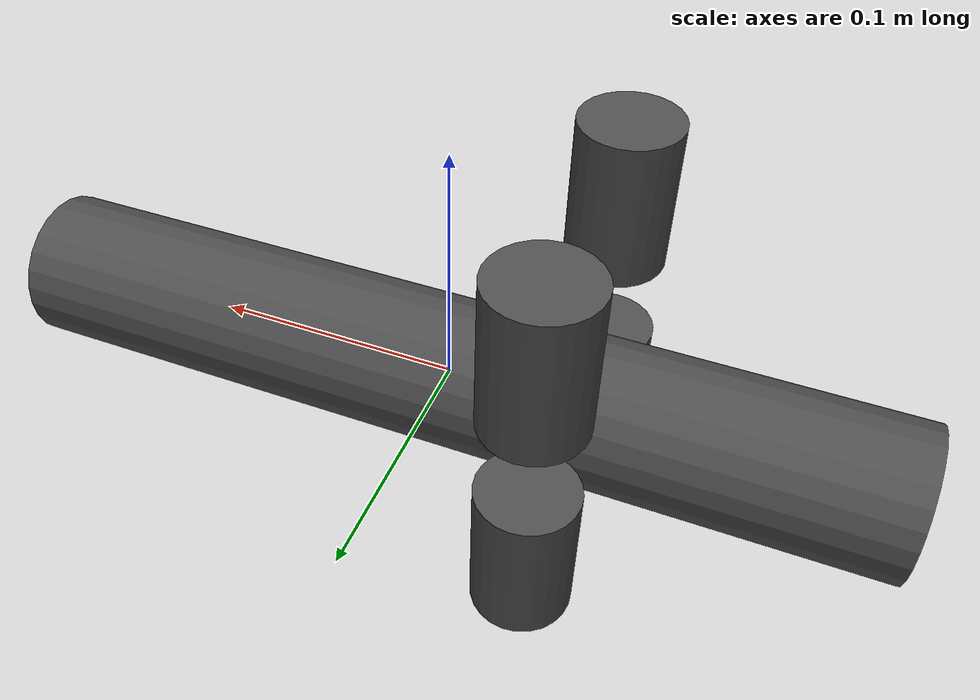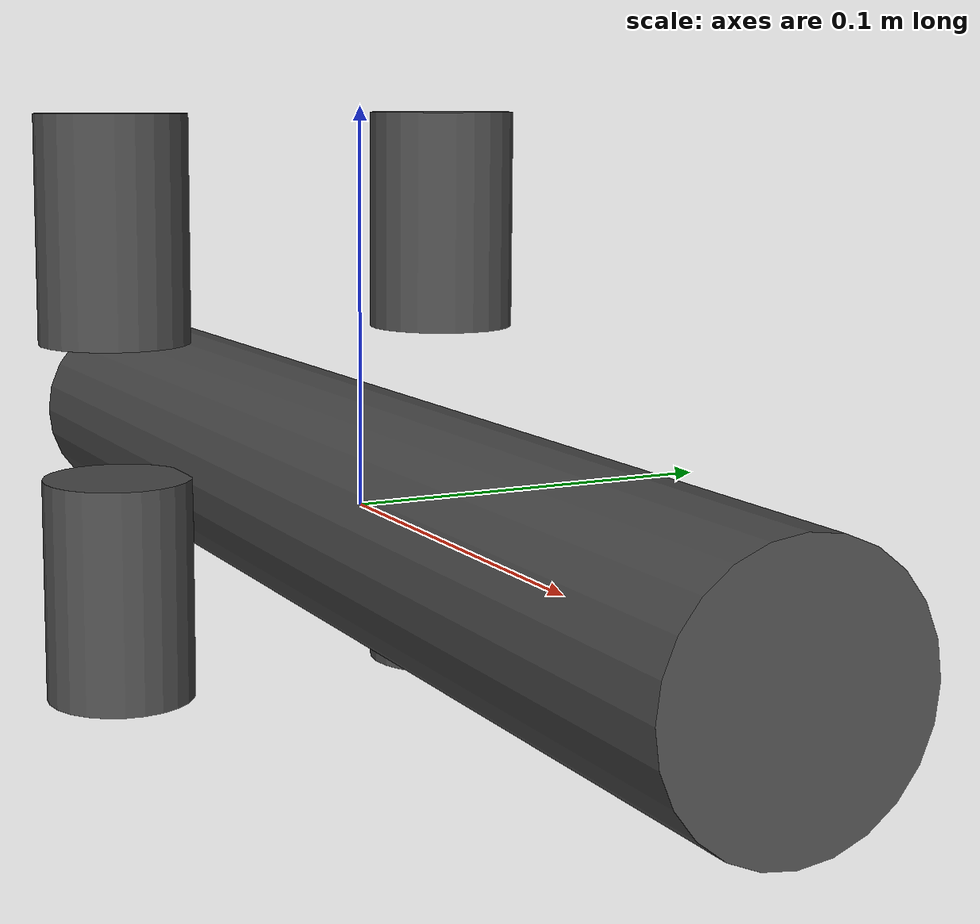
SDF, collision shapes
<sdf version='1.5'>
  <model name='hippocampus_vision_3'>
    <plugin name="vision_plugin" filename="libgazebo_vision_plugin.so">
        <robotNamespace></robotNamespace>
        <pubRate>30</pubRate>
        <randomWalk>1.0</randomWalk>
        <noiseDensity>5e-04</noiseDensity>
        <corellationTime>60.0</corellationTime>
    </plugin>

    <include>
      <uri>model://hippocampus_3</uri>
    </include>

  </model>
</sdf>

<!-- vim: set et ft=xml fenc=utf-8 ff=unix sts=0 sw=2 ts=2 : -->

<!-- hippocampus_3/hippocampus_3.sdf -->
<sdf version='1.6'>
  <model name='hippocampus'>
    <link name='base_link'>
      <pose>0 0 0 0 0 0</pose>
      <inertial>
        <pose>0 0 0 0 0 0</pose>
        <mass>1.47</mass>
        <inertia>
          <ixx>0.002408</ixx>
          <ixy>0</ixy>
          <ixz>0</ixz>
          <iyy>100.010717</iyy>
          <iyz>0</iyz>
          <izz>0.010717</izz>
        </inertia>
      </inertial>
      <!--
         no self collision and no kinematics, since both are are modelled later (collision via a cylinder)
      -->
      <self_collide>0</self_collide>
      <kinematic>0</kinematic>
      <velocity_decay/>
      <gravity>0</gravity>
      <!--
          visual properties of the link, (here the base of the hippocampus)
      -->
      <visual name='visual'>
        <pose>0 0 0 0 0 0</pose>
        <geometry>
          <mesh>
            <uri>model://hippocampus/meshes/hippocampus.stl</uri>
          </mesh>
        </geometry>
        <material>
          <lighting>1</lighting>
          <script>
            <uri>__default__</uri>
            <name>Gazebo/DarkGrey</name>
          </script>
          <ambient>0.3 0.3 0.3 1</ambient>
          <diffuse>0.7 0.7 0.7 1</diffuse>
          <specular>0.01 0.01 0.01 1</specular>
          <emissive>0 0 0 1</emissive>
          <shader type='vertex'>
            <normal_map>__default__</normal_map>
          </shader>
        </material>
        <cast_shadows>1</cast_shadows>
        <transparency>0</transparency>
      </visual>

    <!-- RGB cylinders representing the resulting frame -->
      <visual name="frameX">
      <pose>0.1 0 0 0 1.57 0</pose>
          <geometry>
            <cylinder>
              <length>0.35</length>
              <radius>0.005</radius>
            </cylinder>
          </geometry>
          <material>
            <ambient>0.0 0.0 0.0 1</ambient>
            <diffuse>0.0 0.0 0.0 1</diffuse>
            <specular>0.0 0.0 0.0 1</specular>
            <emissive>1.0 0.0 0.0 1</emissive>
          </material>
      </visual>
      <visual name="frameY">
      <pose>0 0.1 0 -1.57 0 0</pose>
          <geometry>
            <cylinder>
              <length>0.25</length>
              <radius>0.005</radius>
            </cylinder>
          </geometry>
          <material>
            <ambient>0.0 0.0 0.0 1</ambient>
            <diffuse>0.0 0.0 0.0 1</diffuse>
            <specular>0.0 0.0 0.0 1</specular>
            <emissive>0.0 1.0 0.0 1</emissive>
          </material>
      </visual>
      <visual name="frameZ">
      <pose>0 0 0.1 0 0 0</pose>
          <geometry>
            <cylinder>
              <length>0.25</length>
              <radius>0.005</radius>
            </cylinder>
          </geometry>
          <material>
            <ambient>0.0 0.0 0.0 1</ambient>
            <diffuse>0.0 0.0 0.0 1</diffuse>
            <specular>0.0 0.0 0.0 1</specular>
            <emissive>0.0 0.0 1.0 1</emissive>
          </material>
      </visual>

      <collision name='base_link_inertia_collision'>
        <laser_retro>0</laser_retro>
        <max_contacts>10</max_contacts>
        <pose>0 0 0 0 1.570796 0</pose>
        <geometry>
          <cylinder>
            <radius>0.03</radius>
            <length>0.36</length>
          </cylinder>
        </geometry>
        <!--
            Here the surface attributes are defined for the colision cylinder
        -->
        <surface>
          <friction>
            <ode>
              <mu>1</mu>
              <mu2>1</mu2>
              <fdir1>0 0 0</fdir1>
              <slip1>0</slip1>
              <slip2>0</slip2>
            </ode>
          </friction>
          <bounce>
            <restitution_coefficient>0</restitution_coefficient>
            <threshold>1e+06</threshold>
          </bounce>
          <contact>
            <collide_without_contact>0</collide_without_contact>
            <collide_without_contact_bitmask>1</collide_without_contact_bitmask>
            <collide_bitmask>1</collide_bitmask>
            <ode>
              <soft_cfm>0</soft_cfm>
              <soft_erp>0.2</soft_erp>
              <kp>1e+13</kp>
              <kd>1</kd>
              <max_vel>0.01</max_vel>
              <min_depth>0</min_depth>
            </ode>
            <bullet>
              <split_impulse>1</split_impulse>
              <split_impulse_penetration_threshold>-0.01</split_impulse_penetration_threshold>
              <soft_cfm>0</soft_cfm>
              <soft_erp>0.2</soft_erp>
              <kp>1e+13</kp>
              <kd>1</kd>
            </bullet>
          </contact>
        </surface>
      </collision>
    </link>

    <link name='/imu_link'>
      <pose>0 0 0 3.1415 0 0</pose>
      <inertial>
        <pose>0 0 0 0 0 0</pose>
        <mass>0.015</mass>
        <inertia>
          <ixx>1e-05</ixx>
          <ixy>0</ixy>
          <ixz>0</ixz>
          <iyy>1e-05</iyy>
          <iyz>0</iyz>
          <izz>1e-05</izz>
        </inertia>
      </inertial>
      <self_collide>0</self_collide>
      <kinematic>0</kinematic>
      <gravity>0</gravity>
    </link>

    <joint name='/imu_joint' type='revolute'>
      <child>/imu_link</child>
      <parent>base_link</parent>
      <axis>
        <xyz>1 0 0</xyz>
        <limit>
          <lower>0</lower>
          <upper>0</upper>
          <effort>0</effort>
          <velocity>0</velocity>
        </limit>
        <dynamics>
          <spring_reference>0</spring_reference>
          <spring_stiffness>0</spring_stiffness>
          <damping>0</damping>
          <friction>0</friction>
        </dynamics>
	<use_parent_model_frame>1</use_parent_model_frame>
      </axis>
      <physics>
        <ode>
          <limit>
            <cfm>0</cfm>
            <erp>0.2</erp>
          </limit>
          <suspension>
            <cfm>0</cfm>
            <erp>0.2</erp>
          </suspension>
        </ode>
      </physics>
    </joint>

    <!-- CCW 1-->
    <link name='rotor_0'>
      <pose>-0.05 -0.0481 -0.0481 0 0 0</pose>
      <self_collide>0</self_collide>
      <kinematic>0</kinematic>
      <velocity_decay/>
      <gravity>0</gravity>
      <collision name='rotor_0_collision'>
        <laser_retro>0</laser_retro>
        <max_contacts>10</max_contacts>
        <pose>0 0 0.02 0 0 0</pose>
        <geometry>
          <cylinder>
            <radius>0.02</radius>
            <length>0.06</length>
          </cylinder>
        </geometry>
        <surface>
          <friction>
            <ode>
              <mu>1</mu>
              <mu2>1</mu2>
              <fdir1>0 0 0</fdir1>
              <slip1>0</slip1>
              <slip2>0</slip2>
            </ode>
          </friction>
          <bounce>
            <restitution_coefficient>0</restitution_coefficient>
            <threshold>1e+06</threshold>
          </bounce>
          <contact>
            <collide_without_contact>0</collide_without_contact>
            <collide_without_contact_bitmask>1</collide_without_contact_bitmask>
            <collide_bitmask>1</collide_bitmask>
            <ode>
              <soft_cfm>0</soft_cfm>
              <soft_erp>0.2</soft_erp>
              <kp>1e+13</kp>
              <kd>1</kd>
              <max_vel>0.01</max_vel>
              <min_depth>0</min_depth>
            </ode>
            <bullet>
              <split_impulse>1</split_impulse>
              <split_impulse_penetration_threshold>-0.01</split_impulse_penetration_threshold>
              <soft_cfm>0</soft_cfm>
              <soft_erp>0.2</soft_erp>
              <kp>1e+13</kp>
              <kd>1</kd>
            </bullet>
          </contact>
        </surface>
      </collision>
      <visual name='rotor_0_visual'>
        <pose>0 0 0 0 0 0</pose>
        <geometry>
          <mesh>
            <scale>1 1 1</scale>
            <uri>model://hippocampus/meshes/hippocampus_prop.stl</uri>
          </mesh>
        </geometry>
        <material>
          <script>
            <name>Gazebo/DarkGrey</name>
            <uri>file://media/materials/scripts/gazebo.material</uri>
          </script>
          <ambient>0 0 1 1</ambient>
          <diffuse>0 0 1 1</diffuse>
          <specular>0 0 1 1</specular>
          <emissive>0 0 1 1</emissive>
          <shader type='vertex'>
            <normal_map>__default__</normal_map>
          </shader>
        </material>
        <cast_shadows>1</cast_shadows>
        <transparency>0</transparency>
      </visual>
    </link>
    <joint name='rotor_0_joint' type='revolute'>
      <child>rotor_0</child>
      <parent>base_link</parent>
      <axis>
        <xyz>1 0 0</xyz>
        <limit>
          <lower>-1e+16</lower>
          <upper>1e+16</upper>
          <effort>-1</effort>
          <velocity>-1</velocity>
        </limit>
        <dynamics>
          <spring_reference>0</spring_reference>
          <spring_stiffness>0</spring_stiffness>
          <damping>0</damping>
          <friction>0</friction>
        </dynamics>
        <use_parent_model_frame>1</use_parent_model_frame>
      </axis>
      <physics>
        <ode>
          <limit>
            <cfm>0</cfm>
            <erp>0.2</erp>
          </limit>
          <suspension>
            <cfm>0</cfm>
            <erp>0.2</erp>
          </suspension>
        </ode>
      </physics>
    </joint>
    <!-- CW 2 -->
    <link name='rotor_1'>
      <pose>-0.05 +0.0481 -0.0481 0 0 0</pose>
      <self_collide>0</self_collide>
      <kinematic>0</kinematic>
      <velocity_decay/>
      <gravity>0</gravity>
      <collision name='rotor_1_collision'>
        <laser_retro>0</laser_retro>
        <max_contacts>10</max_contacts>
        <pose>0 0 0.02 0 0 0</pose>
        <geometry>
          <cylinder>
            <radius>0.02</radius>
            <length>0.06</length>
          </cylinder>
        </geometry>
        <surface>
          <friction>
            <ode>
              <mu>1</mu>
              <mu2>1</mu2>
              <fdir1>0 0 0</fdir1>
              <slip1>0</slip1>
              <slip2>0</slip2>
            </ode>
          </friction>
          <bounce>
            <restitution_coefficient>0</restitution_coefficient>
            <threshold>1e+06</threshold>
          </bounce>
          <contact>
            <collide_without_contact>0</collide_without_contact>
            <collide_without_contact_bitmask>1</collide_without_contact_bitmask>
            <collide_bitmask>1</collide_bitmask>
            <ode>
              <soft_cfm>0</soft_cfm>
              <soft_erp>0.2</soft_erp>
              <kp>1e+13</kp>
              <kd>1</kd>
              <max_vel>0.01</max_vel>
              <min_depth>0</min_depth>
            </ode>
            <bullet>
              <split_impulse>1</split_impulse>
              <split_impulse_penetration_threshold>-0.01</split_impulse_penetration_threshold>
              <soft_cfm>0</soft_cfm>
              <soft_erp>0.2</soft_erp>
              <kp>1e+13</kp>
              <kd>1</kd>
            </bullet>
          </contact>
        </surface>
      </collision>
      <visual name='rotor_1_visual'>
        <pose>0 0 0 0 0 0</pose>
        <geometry>
          <mesh>
            <scale>1 1 1</scale>
            <uri>model://hippocampus/meshes/hippocampus_prop.stl</uri>
          </mesh>
        </geometry>
        <material>
          <script>
            <name>Gazebo/DarkGrey</name>
            <uri>file://media/materials/scripts/gazebo.material</uri>
          </script>
          <ambient>0 0 1 1</ambient>
          <diffuse>0 0 1 1</diffuse>
          <specular>0 0 1 1</specular>
          <emissive>0 0 1 1</emissive>
          <shader type='vertex'>
            <normal_map>__default__</normal_map>
          </shader>
        </material>
        <cast_shadows>1</cast_shadows>
        <transparency>0</transparency>
      </visual>
    </link>
    <joint name='rotor_1_joint' type='revolute'>
      <parent>base_link</parent>
      <child>rotor_1</child>
      <axis>
        <xyz>1 0 0</xyz>
        <use_parent_model_frame>1</use_parent_model_frame>
        <limit>
          <lower>-1e+16</lower>
          <upper>1e+16</upper>
          <effort>-1</effort>
          <velocity>-1</velocity>
        </limit>
        <dynamics>
          <spring_reference>0</spring_reference>
          <spring_stiffness>0</spring_stiffness>
          <damping>0</damping>
          <friction>0</friction>
        </dynamics>
      </axis>
      <physics>
        <ode>
          <limit>
            <cfm>0</cfm>
            <erp>0.2</erp>
          </limit>
          <suspension>
            <cfm>0</cfm>
            <erp>0.2</erp>
          </suspension>
        </ode>
      </physics>
    </joint>
    <!-- CCW 3 -->
    <link name='rotor_2'>
      <pose>-0.05 0.0481 0.0481 0 0 0</pose>
      <self_collide>0</self_collide>
      <kinematic>0</kinematic>
      <velocity_decay/>
      <gravity>0</gravity>
      <collision name='rotor_2_collision'>
        <laser_retro>0</laser_retro>
        <max_contacts>10</max_contacts>
        <pose>0 0 0.02 0 0 0</pose>
        <geometry>
          <cylinder>
            <radius>0.02</radius>
            <length>0.06</length>
          </cylinder>
        </geometry>
        <surface>
          <friction>
            <ode>
              <mu>1</mu>
              <mu2>1</mu2>
              <fdir1>0 0 0</fdir1>
              <slip1>0</slip1>
              <slip2>0</slip2>
            </ode>
          </friction>
          <bounce>
            <restitution_coefficient>0</restitution_coefficient>
            <threshold>1e+06</threshold>
          </bounce>
          <contact>
            <collide_without_contact>0</collide_without_contact>
            <collide_without_contact_bitmask>1</collide_without_contact_bitmask>
            <collide_bitmask>1</collide_bitmask>
            <ode>
              <soft_cfm>0</soft_cfm>
              <soft_erp>0.2</soft_erp>
              <kp>1e+13</kp>
              <kd>1</kd>
              <max_vel>0.01</max_vel>
              <min_depth>0</min_depth>
            </ode>
            <bullet>
              <split_impulse>1</split_impulse>
              <split_impulse_penetration_threshold>-0.01</split_impulse_penetration_threshold>
              <soft_cfm>0</soft_cfm>
              <soft_erp>0.2</soft_erp>
              <kp>1e+13</kp>
              <kd>1</kd>
            </bullet>
          </contact>
        </surface>
      </collision>
      <visual name='rotor_2_visual'>
        <pose>0 0 0 0 0 0</pose>
        <geometry>
          <mesh>
            <scale>1 1 1</scale>
            <uri>model://hippocampus/meshes/hippocampus_prop.stl</uri>
          </mesh>
        </geometry>
        <material>
          <script>
            <name>Gazebo/DarkGrey</name>
            <uri>file://media/materials/scripts/gazebo.material</uri>
          </script>
          <ambient>0 0 1 1</ambient>
          <diffuse>0 0 1 1</diffuse>
          <specular>0 0 1 1</specular>
          <emissive>0 0 1 1</emissive>
          <shader type='vertex'>
            <normal_map>__default__</normal_map>
          </shader>
        </material>
        <cast_shadows>1</cast_shadows>
        <transparency>0</transparency>
      </visual>
    </link>
    <joint name='rotor_2_joint' type='revolute'>
      <parent>base_link</parent>
      <child>rotor_2</child>
      <axis>
        <xyz>1 0 0</xyz>
        <use_parent_model_frame>1</use_parent_model_frame>
        <limit>
          <lower>-1e+16</lower>
          <upper>1e+16</upper>
          <effort>-1</effort>
          <velocity>-1</velocity>
        </limit>
        <dynamics>
          <spring_reference>0</spring_reference>
          <spring_stiffness>0</spring_stiffness>
          <damping>0</damping>
          <friction>0</friction>
        </dynamics>
      </axis>
      <physics>
        <ode>
          <limit>
            <cfm>0</cfm>
            <erp>0.2</erp>
          </limit>
          <suspension>
            <cfm>0</cfm>
            <erp>0.2</erp>
          </suspension>
        </ode>
      </physics>
    </joint>
    <!-- CW 4 -->
    <link name='rotor_3'>
      <pose>-0.05 -0.0481 +0.0481 0 0 0</pose>
      <self_collide>0</self_collide>
      <kinematic>0</kinematic>
      <velocity_decay/>
      <gravity>0</gravity>
      <collision name='rotor_3_collision'>
        <laser_retro>0</laser_retro>
        <max_contacts>10</max_contacts>
        <pose>0 0 0.02 0 0 0</pose>
        <geometry>
          <cylinder>
            <radius>0.02</radius>
            <length>0.06</length>
          </cylinder>
        </geometry>
        <surface>
          <friction>
            <ode>
              <mu>1</mu>
              <mu2>1</mu2>
              <fdir1>0 0 0</fdir1>
              <slip1>0</slip1>
              <slip2>0</slip2>
            </ode>
          </friction>
          <bounce>
            <restitution_coefficient>0</restitution_coefficient>
            <threshold>1e+06</threshold>
          </bounce>
          <contact>
            <collide_without_contact>0</collide_without_contact>
            <collide_without_contact_bitmask>1</collide_without_contact_bitmask>
            <collide_bitmask>1</collide_bitmask>
            <ode>
              <soft_cfm>0</soft_cfm>
              <soft_erp>0.2</soft_erp>
              <kp>1e+13</kp>
              <kd>1</kd>
              <max_vel>0.01</max_vel>
              <min_depth>0</min_depth>
            </ode>
            <bullet>
              <split_impulse>1</split_impulse>
              <split_impulse_penetration_threshold>-0.01</split_impulse_penetration_threshold>
              <soft_cfm>0</soft_cfm>
              <soft_erp>0.2</soft_erp>
              <kp>1e+13</kp>
              <kd>1</kd>
            </bullet>
          </contact>
        </surface>
      </collision>
      <visual name='rotor_3_visual'>
        <pose>0 0 0 0 0 0</pose>
        <geometry>
          <mesh>
            <scale>1 1 1</scale>
            <uri>model://hippocampus/meshes/hippocampus_prop.stl</uri>
          </mesh>
        </geometry>
        <material>
          <script>
            <name>Gazebo/DarkGrey</name>
            <uri>__default__</uri>
          </script>
          <ambient>0 0 1 1</ambient>
          <diffuse>0 0 1 1</diffuse>
          <specular>0 0 1 1</specular>
          <emissive>0 0 1 1</emissive>
          <shader type='vertex'>
            <normal_map>__default__</normal_map>
          </shader>
        </material>
        <cast_shadows>1</cast_shadows>
        <transparency>0</transparency>
      </visual>
    </link>
    <joint name='rotor_3_joint' type='revolute'>
      <parent>base_link</parent>
      <child>rotor_3</child>
      <axis>
        <xyz>1 0 0</xyz>
        <use_parent_model_frame>1</use_parent_model_frame>
        <limit>
          <lower>-1e+16</lower>
          <upper>1e+16</upper>
          <effort>-1</effort>
          <velocity>-1</velocity>
        </limit>
        <dynamics>
          <spring_reference>0</spring_reference>
          <spring_stiffness>0</spring_stiffness>
          <damping>0</damping>
          <friction>0</friction>
        </dynamics>
      </axis>
      <physics>
        <ode>
          <limit>
            <cfm>0</cfm>
            <erp>0.2</erp>
          </limit>
          <suspension>
            <cfm>0</cfm>
            <erp>0.2</erp>
          </suspension>
        </ode>
      </physics>
    </joint>

    <!--
        Now the plugins which are called by the simulation are defined. Also important parameters such as the transition
        from motor command to real force are defined.
    -->
    <plugin name='rosbag' filename='libgazebo_multirotor_base_plugin.so'>
      <robotNamespace/>
      <linkName>base_link</linkName>
      <rotorVelocitySlowdownSim>10</rotorVelocitySlowdownSim>
    </plugin>

    <!--
        The gazebo_mavlink_plugin.cpp is called. Parameters are transferred.
    -->

    <!--
        The gazebo_uvv_plugin is called. Parameters such as the namespace or addedMass are transferred.
    -->

    <plugin name='uuv_plugin' filename='libgazebo_uuv_plugin.so'>
      <robotNamespace/>
      <commandSubTopic>/gazebo/command/motor_speed</commandSubTopic>
      <linkName>base_link</linkName>
      <motorForceConstant>1.75</motorForceConstant>
      <motorTorqueConstant>0.002</motorTorqueConstant>

      <!-- Parameters for the simulation -->

      <!--
        Added Mass Matrix as two vectors in order to define the diagonal
        Real Values: Xu = -1,11 kg; Yv = Zw = -2,8 kg; Kp = -0,00451 kgm²; Mq = Nr = -0,0163 kgm²
      -->

      <addedMassLinear>1.11 2.8 2.8</addedMassLinear>
      <addedMassAngular>0.00451 100.0163 0.0163</addedMassAngular>

      <!--
        Damping Matrix as two vectors in order to define the diagonal
        Real Values:
      -->
      <dampingLinear>5.39 17.360 17.360</dampingLinear>
      <dampingAngular>0.00114 100.007 0.007</dampingAngular>

    </plugin>

    <!--
        The gazebo_imu_plugin.cpp is called.
    -->

    <plugin name='front_right_motor_model' filename='libgazebo_motor_model.so'>
      <robotNamespace/>
      <jointName>rotor_0_joint</jointName>
      <linkName>rotor_0</linkName>
      <turningDirection>ccw</turningDirection>
      <timeConstantUp>0.0125</timeConstantUp>
      <timeConstantDown>0.025</timeConstantDown>
      <maxRotVelocity>838</maxRotVelocity>
      <motorConstant>0.0</motorConstant>
      <momentConstant>0.0</momentConstant>
      <commandSubTopic>/gazebo/command/motor_speed</commandSubTopic>
      <motorNumber>0</motorNumber>
      <rotorDragCoefficient>0.0</rotorDragCoefficient>
      <rollingMomentCoefficient>0.0</rollingMomentCoefficient>
      <motorSpeedPubTopic>motor_speed/0</motorSpeedPubTopic>
      <rotorVelocitySlowdownSim>0.05</rotorVelocitySlowdownSim>
    </plugin>
    <plugin name='back_left_motor_model' filename='libgazebo_motor_model.so'>
      <robotNamespace/>
      <jointName>rotor_1_joint</jointName>
      <linkName>rotor_1</linkName>
      <turningDirection>cw</turningDirection>
      <timeConstantUp>0.0125</timeConstantUp>
      <timeConstantDown>0.025</timeConstantDown>
      <maxRotVelocity>838</maxRotVelocity>
      <motorConstant>0.0</motorConstant>
      <momentConstant>0.0</momentConstant>
      <commandSubTopic>/gazebo/command/motor_speed</commandSubTopic>
      <motorNumber>1</motorNumber>
      <rotorDragCoefficient>0.0</rotorDragCoefficient>
      <rollingMomentCoefficient>0.0</rollingMomentCoefficient>
      <motorSpeedPubTopic>motor_speed/1</motorSpeedPubTopic>
      <rotorVelocitySlowdownSim>0.05</rotorVelocitySlowdownSim>
    </plugin>
    <plugin name='front_left_motor_model' filename='libgazebo_motor_model.so'>
      <robotNamespace/>
      <jointName>rotor_2_joint</jointName>
      <linkName>rotor_2</linkName>
      <turningDirection>ccw</turningDirection>
      <timeConstantUp>0.0125</timeConstantUp>
      <timeConstantDown>0.025</timeConstantDown>
      <maxRotVelocity>838</maxRotVelocity>
      <motorConstant>0.0</motorConstant>
      <momentConstant>0.0</momentConstant>
      <commandSubTopic>/gazebo/command/motor_speed</commandSubTopic>
      <motorNumber>2</motorNumber>
      <rotorDragCoefficient>0.0</rotorDragCoefficient>
      <rollingMomentCoefficient>0.0</rollingMomentCoefficient>
      <motorSpeedPubTopic>motor_speed/2</motorSpeedPubTopic>
      <rotorVelocitySlowdownSim>0.05</rotorVelocitySlowdownSim>
    </plugin>
    <plugin name='back_right_motor_model' filename='libgazebo_motor_model.so'>
      <robotNamespace/>
      <jointName>rotor_3_joint</jointName>
      <linkName>rotor_3</linkName>
      <turningDirection>cw</turningDirection>
      <timeConstantUp>0.0125</timeConstantUp>
      <timeConstantDown>0.025</timeConstantDown>
      <maxRotVelocity>838</maxRotVelocity>
      <motorConstant>0.0</motorConstant>
      <momentConstant>0.0</momentConstant>
      <commandSubTopic>/gazebo/command/motor_speed</commandSubTopic>
      <motorNumber>3</motorNumber>
      <rotorDragCoefficient>0.0</rotorDragCoefficient>
      <rollingMomentCoefficient>0.0</rollingMomentCoefficient>
      <motorSpeedPubTopic>motor_speed/3</motorSpeedPubTopic>
      <rotorVelocitySlowdownSim>0.05</rotorVelocitySlowdownSim>
    </plugin>
    <allow_auto_disable>1</allow_auto_disable>
    <plugin name="gps_plugin" filename="libgazebo_gps_plugin.so">
        <robotNamespace></robotNamespace>
        <gpsNoise>true</gpsNoise>
    </plugin>
    <plugin name='mavlink_interface' filename='libgazebo_mavlink_interface.so'>
      <robotNamespace/>
      <imuSubTopic>/imu</imuSubTopic>
      <gpsSubTopic>/gps</gpsSubTopic>
      <mavlink_addr>INADDR_ANY</mavlink_addr>
      <mavlink_udp_port>14563</mavlink_udp_port>
      <serialEnabled>false</serialEnabled>
      <serialDevice>/dev/ttyACM0</serialDevice>
      <baudRate>921600</baudRate>
      <qgc_addr>INADDR_ANY</qgc_addr>
      <qgc_udp_port>14550</qgc_udp_port>
      <hil_mode>false</hil_mode>
      <hil_state_level>false</hil_state_level>
      <vehicle_is_tailsitter>false</vehicle_is_tailsitter>
      <send_odometry>false</send_odometry>
      <motorSpeedCommandPubTopic>/gazebo/command/motor_speed</motorSpeedCommandPubTopic>
      <!-- control channels, this way for every channel different settings can be realized -->
      <control_channels>
        <channel name='rotor1'>
          <input_index>0</input_index>
          <input_offset>0</input_offset>
          <input_scaling>1</input_scaling>
          <zero_position_disarmed>0</zero_position_disarmed>
          <zero_position_armed>0</zero_position_armed>
          <joint_control_type>velocity</joint_control_type>
        </channel>
        <channel name='rotor2'>
          <input_index>1</input_index>
          <input_offset>0</input_offset>
          <input_scaling>1</input_scaling>
          <zero_position_disarmed>0</zero_position_disarmed>
          <zero_position_armed>0</zero_position_armed>
          <joint_control_type>velocity</joint_control_type>
        </channel>
        <channel name='rotor3'>
          <input_index>2</input_index>
          <input_offset>0</input_offset>
          <input_scaling>1</input_scaling>
          <zero_position_disarmed>0</zero_position_disarmed>
          <zero_position_armed>0</zero_position_armed>
          <joint_control_type>velocity</joint_control_type>
        </channel>
        <channel name='rotor4'>
          <input_index>3</input_index>
          <input_offset>0</input_offset>
          <input_scaling>1</input_scaling>
          <zero_position_disarmed>0</zero_position_disarmed>
          <zero_position_armed>0</zero_position_armed>
          <joint_control_type>velocity</joint_control_type>
        </channel>
      </control_channels>
    </plugin>
    <static>0</static>
    <plugin name='gazebo_imu_plugin' filename='libgazebo_imu_plugin.so'>
      <robotNamespace/>
      <linkName>/imu_link</linkName>
      <imuTopic>/imu</imuTopic>
      <gyroscopeNoiseDensity>0.0003394</gyroscopeNoiseDensity>
      <gyroscopeRandomWalk>3.8785e-05</gyroscopeRandomWalk>
      <gyroscopeBiasCorrelationTime>1000.0</gyroscopeBiasCorrelationTime>
      <gyroscopeTurnOnBiasSigma>0.0087</gyroscopeTurnOnBiasSigma>
      <accelerometerNoiseDensity>0.004</accelerometerNoiseDensity>
      <accelerometerRandomWalk>0.006</accelerometerRandomWalk>
      <accelerometerBiasCorrelationTime>300.0</accelerometerBiasCorrelationTime>
      <accelerometerTurnOnBiasSigma>0.196</accelerometerTurnOnBiasSigma>
    </plugin>
  </model>
</sdf>
